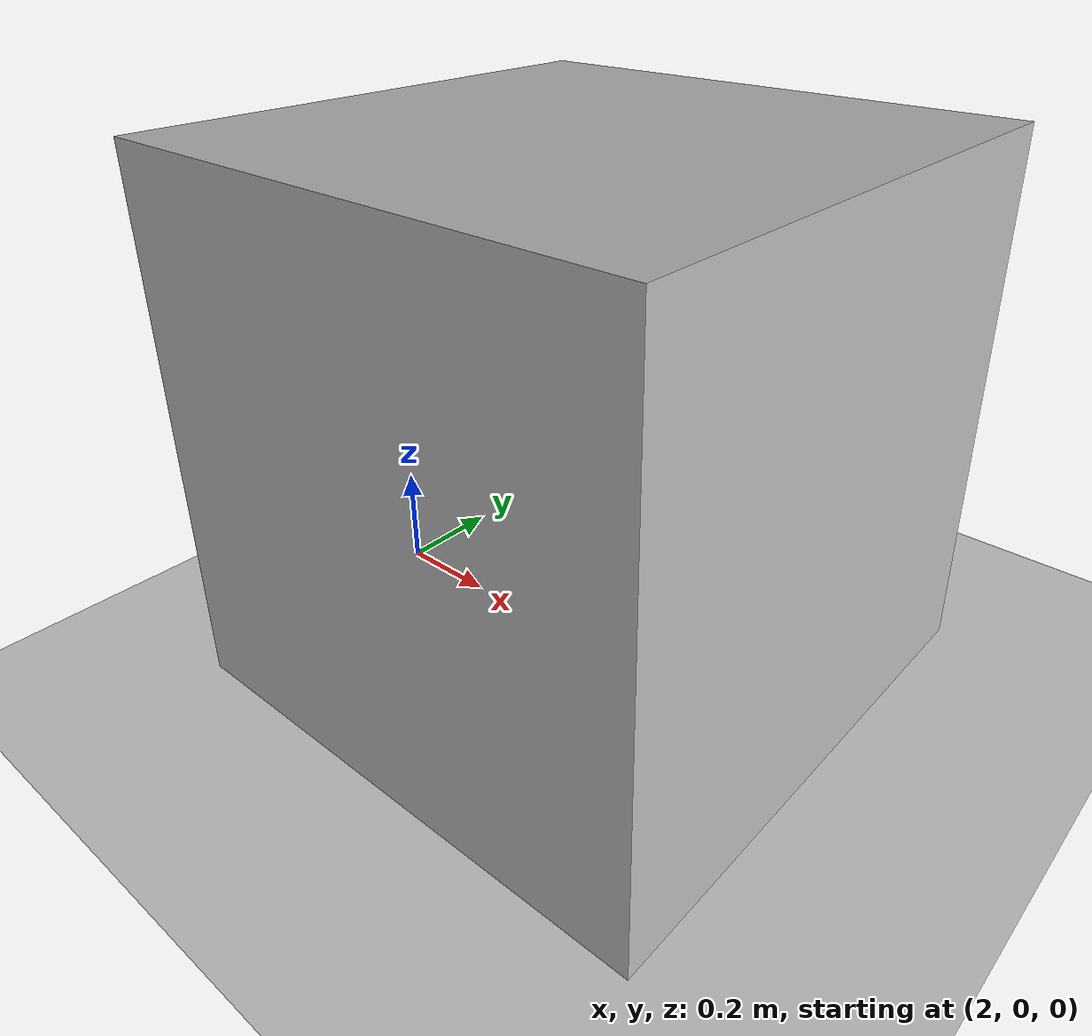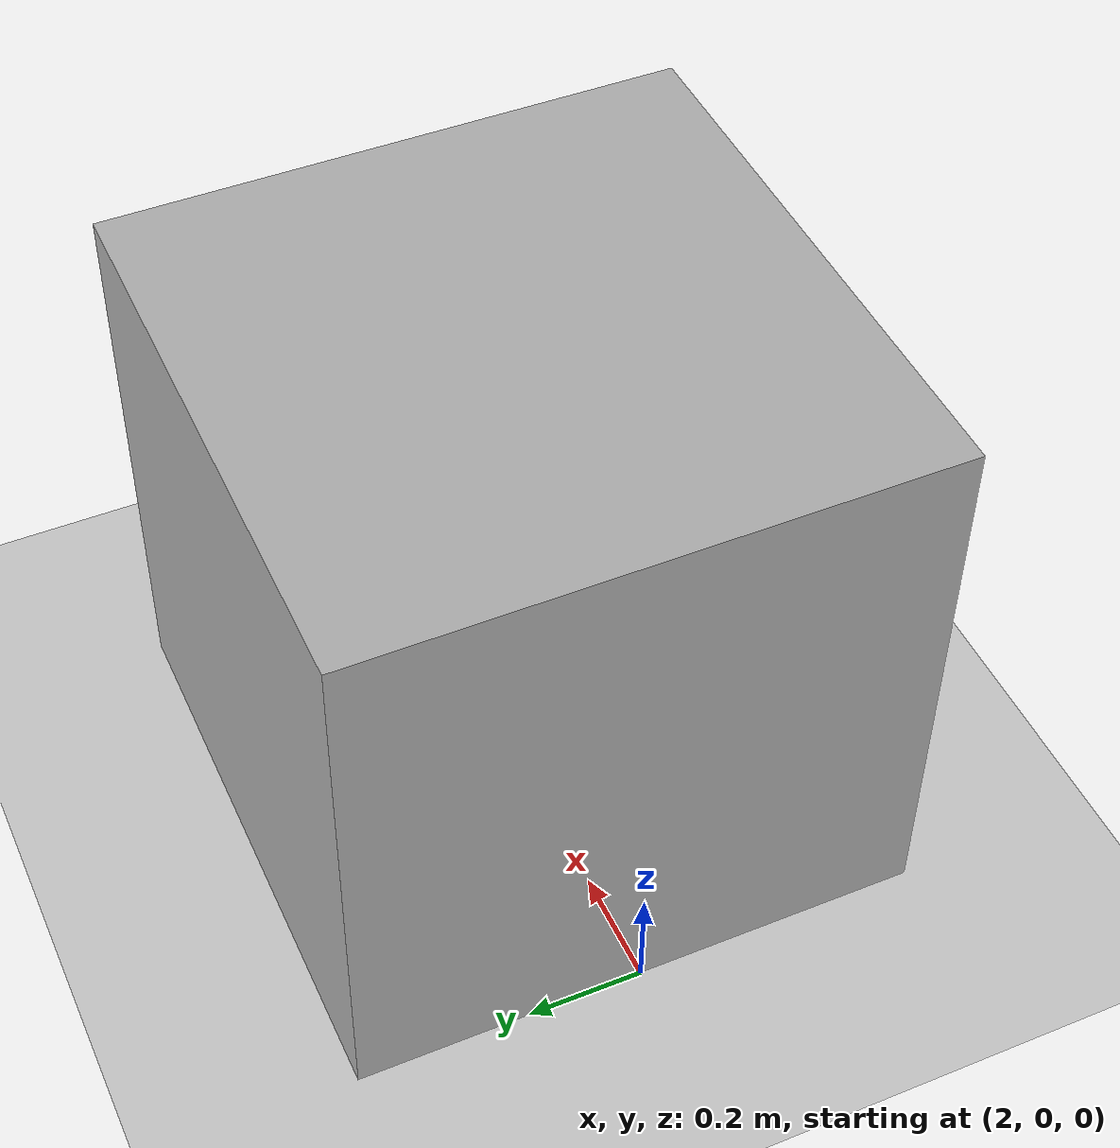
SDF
<?xml version="1.0" ?>
<sdf version="1.6">
  <world name="ngc_world">
    <physics name="1ms" type="ignored">
      <max_step_size>0.001</max_step_size>
      <real_time_factor>1.0</real_time_factor>
    </physics>
    <plugin
      filename="gz-sim-physics-system"
      name="gz::sim::systems::Physics">
    </plugin>
    <plugin
      filename="gz-sim-user-commands-system"
      name="gz::sim::systems::UserCommands">
    </plugin>
    <plugin
      filename="gz-sim-scene-broadcaster-system"
      name="gz::sim::systems::SceneBroadcaster">
    </plugin>
    <plugin
      filename="gz-sim-contact-system"
      name="gz::sim::systems::Contact">
    </plugin>

    <light type="directional" name="sun">
      <cast_shadows>true</cast_shadows>
      <pose>0 0 10 0 0 0</pose>
      <diffuse>0.8 0.8 0.8 1</diffuse>
      <specular>0.2 0.2 0.2 1</specular>
      <attenuation>
        <range>1000</range>
        <constant>0.9</constant>
        <linear>0.01</linear>
        <quadratic>0.001</quadratic>
      </attenuation>
      <direction>-0.5 0.1 -0.9</direction>
    </light>

    <model name="ground_plane">
      <static>true</static>
      <link name="link">
        <collision name="collision">
          <geometry>
            <plane>
              <normal>0 0 1</normal>
              <size>100 100</size>
            </plane>
          </geometry>
        </collision>
        <visual name="visual">
          <geometry>
            <plane>
              <normal>0 0 1</normal>
              <size>100 100</size>
            </plane>
          </geometry>
          <material>
            <ambient>0.8 0.8 0.8 1</ambient>
            <diffuse>0.8 0.8 0.8 1</diffuse>
            <specular>0.8 0.8 0.8 1</specular>
          </material>
        </visual>
      </link>
    </model>

    <model name="obstacle">
      <static>true</static>
      <pose>2.5 0 0.5 0 0 0</pose>
      <link name="link">
        <inertial>
          <mass>100.0</mass>
        </inertial>
        <collision name="collision">
          <geometry>
            <box>
              <size>1 1 1</size>
            </box>
          </geometry>
        </collision>
        <visual name="visual">
          <geometry>
            <box>
              <size>1 1 1</size>
            </box>
          </geometry>
          <material>
            <ambient>.3 .3 .3 1.0</ambient>
            <diffuse>.7 .7 .7 1.0</diffuse>
            <specular>.01 .01 .01 1.00</specular>
          </material>
        </visual>
      </link>
    </model>

  </world>
</sdf>
